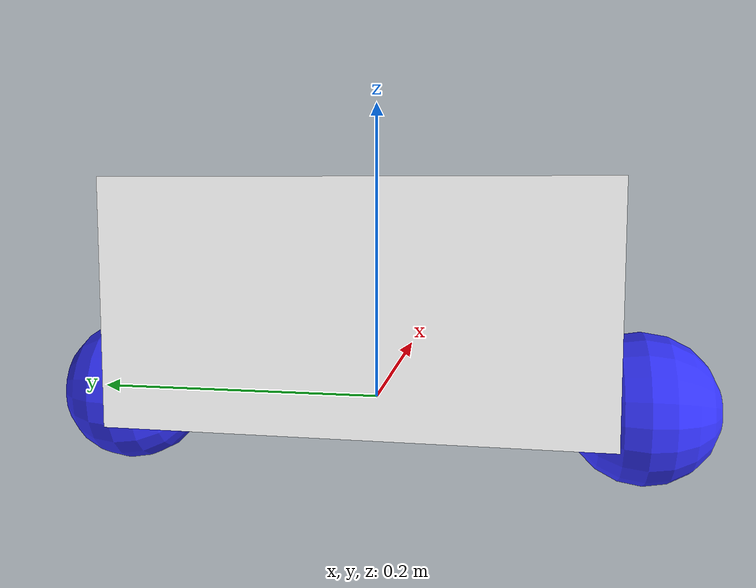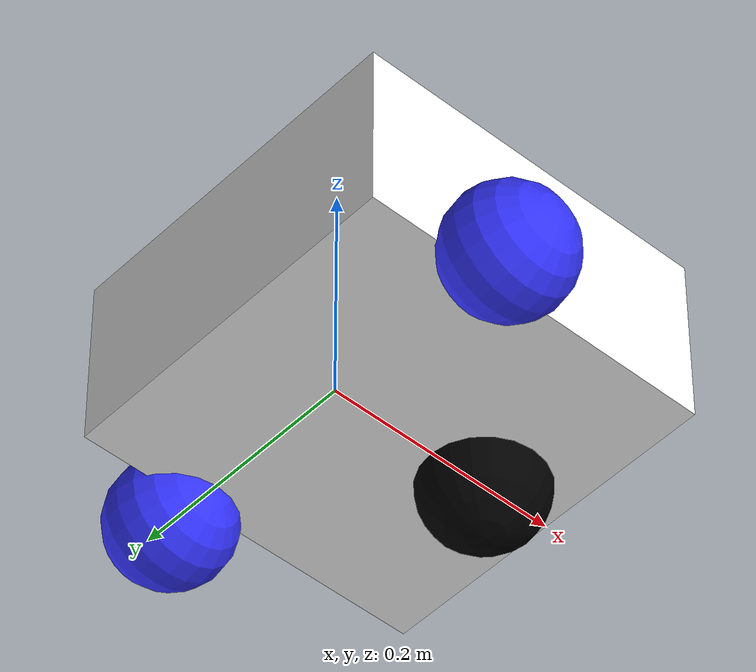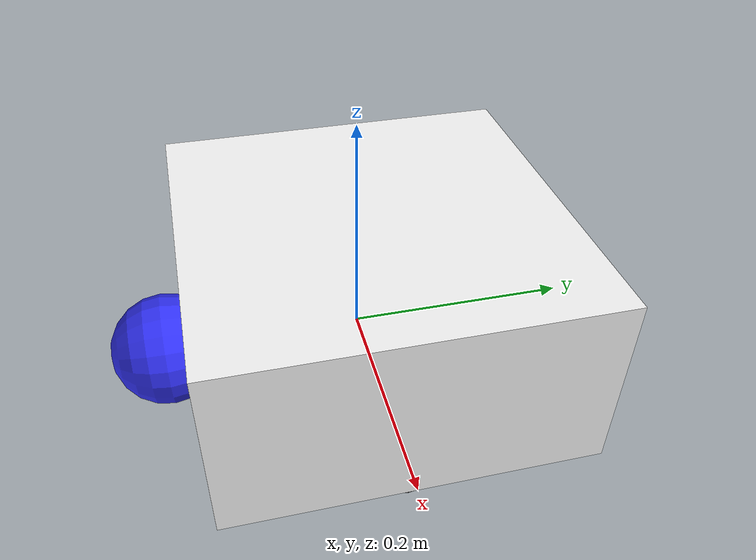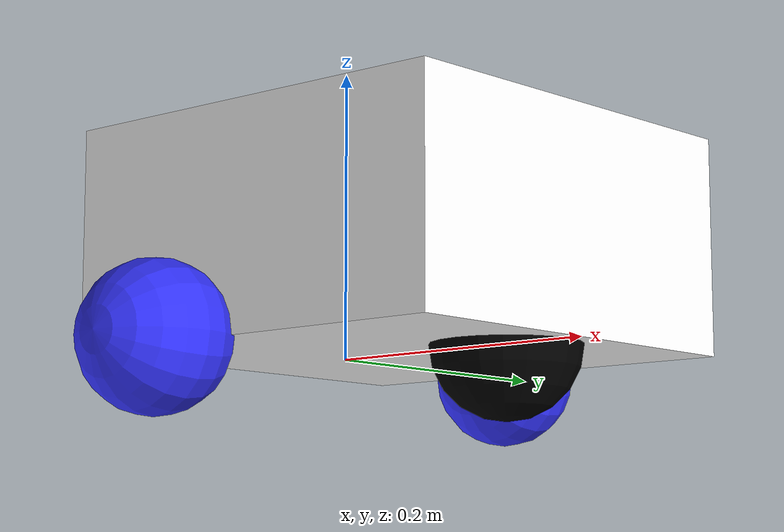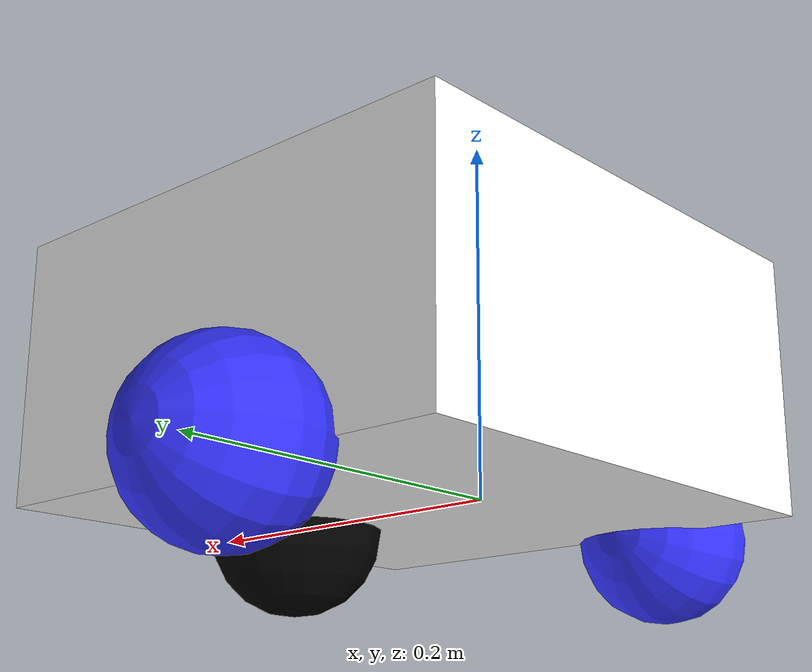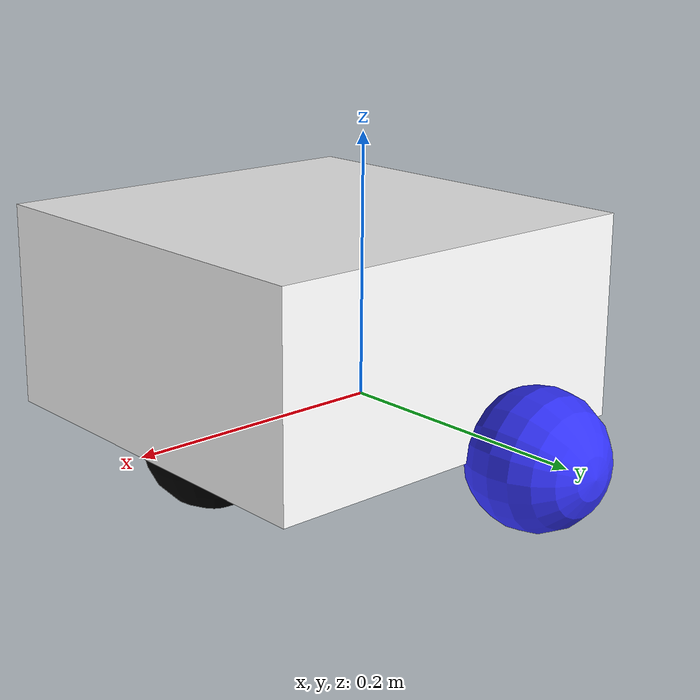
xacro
<?xml version="1.0"?>
<robot xmlns:xacro="http://www.ros.org/wiki/xacro" name="clarky">

    <xacro:arg name="use_ros2_control" default="true"/>
    <!-- Example link -->
    <xacro:if value="$(arg use_ros2_control)">
        <xacro:include filename="ros2_control.xacro" />
    </xacro:if>
    <xacro:unless value="$(arg use_ros2_control)">
        <xacro:include filename="gazebo_control.xacro" />
    </xacro:unless>
    <xacro:include filename="robot_core.xacro" />

</robot>

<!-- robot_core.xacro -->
<robot xmlns:xacro="http://www.ros.org/wiki/xacro" name="clarky">
    <xacro:include filename="inertial_macros.xacro" />

    <material name="white">
        <color rgba="1 1 1 1"/>
    </material>

    <material name="orange">
        <color rgba="1 0.3 0.1 1"/>
    </material>

    <material name="blue">
        <color rgba="0.2 0.2 1 1"/>
    </material>

    <material name="black">
        <color rgba="0 0 0 1"/>
    </material>

    <link name="base_link"></link>

    <joint name="chassis_joint" type="fixed">
        <parent link="base_link"/>
        <child link="chassis"/>
        <origin xyz="-0.1 0 0"/>
    </joint>

    <link name="chassis">
        <visual>
            <origin xyz="0.15 0 0.075" rpy="0 0 0"/>
            <geometry>
                <box size="0.3 0.3 0.15"/>
            </geometry>
            <material name="white"/>
        </visual>
        <collision>
            <origin xyz="0.15 0 0.075" rpy="0 0 0"/>
            <geometry>
                <box size="0.3 0.3 0.15"/>
            </geometry>
        </collision>
        <xacro:inertial_box mass="0.5" x="0.3" y="0.3" z="0.15">
            <origin xyz="0.15 0 0.075" rpy="0 0 0"/>
        </xacro:inertial_box>
    </link>

    <gazebo reference="chassis">
        <material>Gazebo/White</material>
    </gazebo>

    <joint name="left_wheel_joint" type="continuous">
        <parent link="base_link"/>
        <child link="left_wheel"/>
        <origin xyz="0 0.175 0" rpy="-${pi/2} 0 0"/>
        <axis xyz="0 0 1"/>
    </joint>

    <link name="left_wheel">
        <visual>
            <geometry>
                <sphere radius="0.05" />
            </geometry>
            <material name="blue"/>
        </visual>
        <collision>
            <geometry>
                <sphere radius="0.05" />
            </geometry>
            <material name="blue"/>
        </collision>
        <xacro:inertial_sphere mass="0.1" radius="0.05">
            <origin xyz="0 0 0" rpy="0 0 0"/>
        </xacro:inertial_sphere>
    </link>

    <gazebo reference="left_wheel">
        <material>Gazebo/Blue</material>
    </gazebo>

    <joint name="right_wheel_joint" type="continuous">
        <parent link="base_link"/>
        <child link="right_wheel"/>
        <origin xyz="0 -0.175 0" rpy="${pi/2} 0 0"/>
        <axis xyz="0 0 -1"/>
    </joint>

    <link name="right_wheel">
        <visual>
            <geometry>
                <sphere radius="0.05" />
            </geometry>
            <material name="blue"/>
        </visual>
        <collision>
            <geometry>
                <sphere radius="0.05" />
            </geometry>
            <material name="blue"/>
        </collision>
        <xacro:inertial_sphere mass="0.1" radius="0.05">
            <origin xyz="0 0 0" rpy="0 0 0"/>
        </xacro:inertial_sphere>
    </link>

    <gazebo reference="right_wheel">
        <material>Gazebo/Blue</material>
    </gazebo>

    <!-- CASTER WHEEL -->

    <joint name="caster_wheel_joint" type="fixed">
        <parent link="chassis"/>
        <child link="caster_wheel"/>
        <origin xyz="0.24 0 0" rpy="0 0 0"/>
    </joint>

    <link name="caster_wheel">
        <visual>
            <geometry>
                <sphere radius="0.05" />
            </geometry>
            <material name="black"/>
        </visual>
        <collision>
            <geometry>
                <sphere radius="0.05" />
            </geometry>
            <material name="black"/>
        </collision>
    </link>

    <gazebo reference="caster_wheel">
        <material>Gazebo/Black</material>
        <mu1 value="0.001"/>
        <mu2 value="0.001"/>
    </gazebo>

</robot>

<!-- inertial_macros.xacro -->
<robot xmlns:xacro="http://www.ros.org/wiki/xacro" name="clarky">

    <!-- Specify some standard inertial calculations https://en.wikipedia.org/wiki/List_of_moments_of_inertia -->
    <!-- These make use of xacro's mathematical functionality -->

    <xacro:macro name="inertial_sphere" params="mass radius *origin">
        <inertial>
            <xacro:insert_block name="origin"/>
            <mass value="${mass}" />
            <inertia ixx="${(2/5) * mass * (radius*radius)}" ixy="0.0" ixz="0.0"
                    iyy="${(2/5) * mass * (radius*radius)}" iyz="0.0"
                    izz="${(2/5) * mass * (radius*radius)}" />
        </inertial>
    </xacro:macro>

    <xacro:macro name="inertial_box" params="mass x y z *origin">
        <inertial>
            <xacro:insert_block name="origin"/>
            <mass value="${mass}" />
            <inertia ixx="${(1/12) * mass * (y*y+z*z)}" ixy="0.0" ixz="0.0"
                    iyy="${(1/12) * mass * (x*x+z*z)}" iyz="0.0"
                    izz="${(1/12) * mass * (x*x+y*y)}" />
        </inertial>
    </xacro:macro>

    <xacro:macro name="inertial_cylinder" params="mass length radius *origin">
        <inertial>
            <xacro:insert_block name="origin"/>
            <mass value="${mass}" />
            <inertia ixx="${(1/12) * mass * (3*radius*radius + length*length)}" ixy="0.0" ixz="0.0"
                    iyy="${(1/12) * mass * (3*radius*radius + length*length)}" iyz="0.0"
                    izz="${(1/2) * mass * (radius*radius)}" />
        </inertial>
    </xacro:macro>
</robot>
